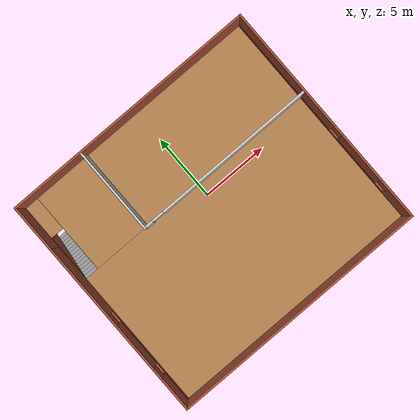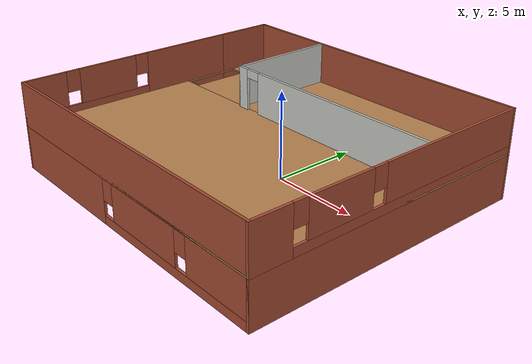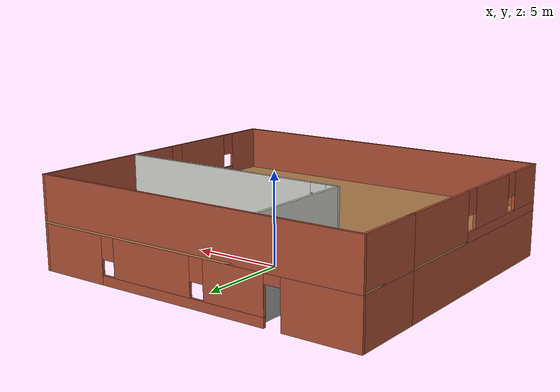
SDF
<?xml version='1.0'?>
<sdf version='1.7'>
  <model name='building'>
    <pose>-0.442049 -1.19175 0 0 -0 0</pose>
    <link name='Floor_0'>
      <pose>-0 0 2.5 0 -0 0</pose>
      <visual name='Floor_0_Visual_0'>
        <pose>-9.29585 0 0.05 0 -0 0</pose>
        <geometry>
          <box>
            <size>0.158294 16.75 0.1</size>
          </box>
        </geometry>
        <material>
          <script>
            <uri>file://media/materials/scripts/gazebo.material</uri>
            <name>Gazebo/Wood</name>
          </script>
          <ambient>1 1 1 1</ambient>
        </material>
        <meta>
          <layer>1</layer>
        </meta>
      </visual>
      <collision name='Floor_0_Collision_0'>
        <geometry>
          <box>
            <size>0.158294 16.75 0.1</size>
          </box>
        </geometry>
        <pose>-9.29585 0 0.05 0 -0 0</pose>
      </collision>
      <visual name='Floor_0_Visual_1'>
        <pose>0.079147 -3.11505 0.05 0 -0 0</pose>
        <geometry>
          <box>
            <size>18.5917 10.5199 0.1</size>
          </box>
        </geometry>
        <material>
          <script>
            <uri>file://media/materials/scripts/gazebo.material</uri>
            <name>Gazebo/Wood</name>
          </script>
          <ambient>1 1 1 1</ambient>
        </material>
        <meta>
          <layer>1</layer>
        </meta>
      </visual>
      <collision name='Floor_0_Collision_1'>
        <geometry>
          <box>
            <size>18.5917 10.5199 0.1</size>
          </box>
        </geometry>
        <pose>0.079147 -3.11505 0.05 0 -0 0</pose>
      </collision>
      <visual name='Floor_0_Visual_2'>
        <pose>0.579147 5.25995 0.05 0 -0 0</pose>
        <geometry>
          <box>
            <size>17.5917 6.23011 0.1</size>
          </box>
        </geometry>
        <material>
          <script>
            <uri>file://media/materials/scripts/gazebo.material</uri>
            <name>Gazebo/Wood</name>
          </script>
          <ambient>1 1 1 1</ambient>
        </material>
        <meta>
          <layer>1</layer>
        </meta>
      </visual>
      <collision name='Floor_0_Collision_2'>
        <geometry>
          <box>
            <size>17.5917 6.23011 0.1</size>
          </box>
        </geometry>
        <pose>0.579147 5.25995 0.05 0 -0 0</pose>
      </collision>
      <visual name='Floor_0_Visual_3'>
        <pose>-8.71671 7.00995 0.05 0 -0 0</pose>
        <geometry>
          <box>
            <size>1 2.73011 0.1</size>
          </box>
        </geometry>
        <material>
          <script>
            <uri>file://media/materials/scripts/gazebo.material</uri>
            <name>Gazebo/Wood</name>
          </script>
          <ambient>1 1 1 1</ambient>
        </material>
        <meta>
          <layer>1</layer>
        </meta>
      </visual>
      <collision name='Floor_0_Collision_3'>
        <geometry>
          <box>
            <size>1 2.73011 0.1</size>
          </box>
        </geometry>
        <pose>-8.71671 7.00995 0.05 0 -0 0</pose>
      </collision>
    </link>
    <link name='Stairs_0'>
      <visual name='Stairs_0_Visual_0'>
        <pose>-8.71671 5.52822 0.083333 0 -0 0</pose>
        <geometry>
          <box>
            <size>1 0.233333 0.166667</size>
          </box>
        </geometry>
        <material>
          <script>
            <uri>file://media/materials/scripts/gazebo.material</uri>
            <name>Gazebo/Grey</name>
          </script>
          <ambient>1 1 1 1</ambient>
        </material>
        <meta>
          <layer>0</layer>
        </meta>
      </visual>
      <collision name='Stairs_0_Collision_0'>
        <geometry>
          <box>
            <size>1 0.233333 0.166667</size>
          </box>
        </geometry>
        <pose>-8.71671 5.52822 0.083333 0 -0 0</pose>
      </collision>
      <visual name='Stairs_0_Visual_1'>
        <pose>-8.71671 5.29489 0.25 0 -0 0</pose>
        <geometry>
          <box>
            <size>1 0.233333 0.166667</size>
          </box>
        </geometry>
        <material>
          <script>
            <uri>file://media/materials/scripts/gazebo.material</uri>
            <name>Gazebo/Grey</name>
          </script>
          <ambient>1 1 1 1</ambient>
        </material>
        <meta>
          <layer>0</layer>
        </meta>
      </visual>
      <collision name='Stairs_0_Collision_1'>
        <geometry>
          <box>
            <size>1 0.233333 0.166667</size>
          </box>
        </geometry>
        <pose>-8.71671 5.29489 0.25 0 -0 0</pose>
      </collision>
      <visual name='Stairs_0_Visual_2'>
        <pose>-8.71671 5.06156 0.416667 0 -0 0</pose>
        <geometry>
          <box>
            <size>1 0.233333 0.166667</size>
          </box>
        </geometry>
        <material>
          <script>
            <uri>file://media/materials/scripts/gazebo.material</uri>
            <name>Gazebo/Grey</name>
          </script>
          <ambient>1 1 1 1</ambient>
        </material>
        <meta>
          <layer>0</layer>
        </meta>
      </visual>
      <collision name='Stairs_0_Collision_2'>
        <geometry>
          <box>
            <size>1 0.233333 0.166667</size>
          </box>
        </geometry>
        <pose>-8.71671 5.06156 0.416667 0 -0 0</pose>
      </collision>
      <visual name='Stairs_0_Visual_3'>
        <pose>-8.71671 4.82822 0.583333 0 -0 0</pose>
        <geometry>
          <box>
            <size>1 0.233333 0.166667</size>
          </box>
        </geometry>
        <material>
          <script>
            <uri>file://media/materials/scripts/gazebo.material</uri>
            <name>Gazebo/Grey</name>
          </script>
          <ambient>1 1 1 1</ambient>
        </material>
        <meta>
          <layer>0</layer>
        </meta>
      </visual>
      <collision name='Stairs_0_Collision_3'>
        <geometry>
          <box>
            <size>1 0.233333 0.166667</size>
          </box>
        </geometry>
        <pose>-8.71671 4.82822 0.583333 0 -0 0</pose>
      </collision>
      <visual name='Stairs_0_Visual_4'>
        <pose>-8.71671 4.59489 0.75 0 -0 0</pose>
        <geometry>
          <box>
            <size>1 0.233333 0.166667</size>
          </box>
        </geometry>
        <material>
          <script>
            <uri>file://media/materials/scripts/gazebo.material</uri>
            <name>Gazebo/Grey</name>
          </script>
          <ambient>1 1 1 1</ambient>
        </material>
        <meta>
          <layer>0</layer>
        </meta>
      </visual>
      <collision name='Stairs_0_Collision_4'>
        <geometry>
          <box>
            <size>1 0.233333 0.166667</size>
          </box>
        </geometry>
        <pose>-8.71671 4.59489 0.75 0 -0 0</pose>
      </collision>
      <visual name='Stairs_0_Visual_5'>
        <pose>-8.71671 4.36156 0.916667 0 -0 0</pose>
        <geometry>
          <box>
            <size>1 0.233333 0.166667</size>
          </box>
        </geometry>
        <material>
          <script>
            <uri>file://media/materials/scripts/gazebo.material</uri>
            <name>Gazebo/Grey</name>
          </script>
          <ambient>1 1 1 1</ambient>
        </material>
        <meta>
          <layer>0</layer>
        </meta>
      </visual>
      <collision name='Stairs_0_Collision_5'>
        <geometry>
          <box>
            <size>1 0.233333 0.166667</size>
          </box>
        </geometry>
        <pose>-8.71671 4.36156 0.916667 0 -0 0</pose>
      </collision>
      <visual name='Stairs_0_Visual_6'>
        <pose>-8.71671 4.12822 1.08333 0 -0 0</pose>
        <geometry>
          <box>
            <size>1 0.233333 0.166667</size>
          </box>
        </geometry>
        <material>
          <script>
            <uri>file://media/materials/scripts/gazebo.material</uri>
            <name>Gazebo/Grey</name>
          </script>
          <ambient>1 1 1 1</ambient>
        </material>
        <meta>
          <layer>0</layer>
        </meta>
      </visual>
      <collision name='Stairs_0_Collision_6'>
        <geometry>
          <box>
            <size>1 0.233333 0.166667</size>
          </box>
        </geometry>
        <pose>-8.71671 4.12822 1.08333 0 -0 0</pose>
      </collision>
      <visual name='Stairs_0_Visual_7'>
        <pose>-8.71671 3.89489 1.25 0 -0 0</pose>
        <geometry>
          <box>
            <size>1 0.233333 0.166667</size>
          </box>
        </geometry>
        <material>
          <script>
            <uri>file://media/materials/scripts/gazebo.material</uri>
            <name>Gazebo/Grey</name>
          </script>
          <ambient>1 1 1 1</ambient>
        </material>
        <meta>
          <layer>0</layer>
        </meta>
      </visual>
      <collision name='Stairs_0_Collision_7'>
        <geometry>
          <box>
            <size>1 0.233333 0.166667</size>
          </box>
        </geometry>
        <pose>-8.71671 3.89489 1.25 0 -0 0</pose>
      </collision>
      <visual name='Stairs_0_Visual_8'>
        <pose>-8.71671 3.66156 1.41667 0 -0 0</pose>
        <geometry>
          <box>
            <size>1 0.233333 0.166667</size>
          </box>
        </geometry>
        <material>
          <script>
            <uri>file://media/materials/scripts/gazebo.material</uri>
            <name>Gazebo/Grey</name>
          </script>
          <ambient>1 1 1 1</ambient>
        </material>
        <meta>
          <layer>0</layer>
        </meta>
      </visual>
      <collision name='Stairs_0_Collision_8'>
        <geometry>
          <box>
            <size>1 0.233333 0.166667</size>
          </box>
        </geometry>
        <pose>-8.71671 3.66156 1.41667 0 -0 0</pose>
      </collision>
      <visual name='Stairs_0_Visual_9'>
        <pose>-8.71671 3.42822 1.58333 0 -0 0</pose>
        <geometry>
          <box>
            <size>1 0.233333 0.166667</size>
          </box>
        </geometry>
        <material>
          <script>
            <uri>file://media/materials/scripts/gazebo.material</uri>
            <name>Gazebo/Grey</name>
          </script>
          <ambient>1 1 1 1</ambient>
        </material>
        <meta>
          <layer>0</layer>
        </meta>
      </visual>
      <collision name='Stairs_0_Collision_9'>
        <geometry>
          <box>
            <size>1 0.233333 0.166667</size>
          </box>
        </geometry>
        <pose>-8.71671 3.42822 1.58333 0 -0 0</pose>
      </collision>
      <visual name='Stairs_0_Visual_10'>
        <pose>-8.71671 3.19489 1.75 0 -0 0</pose>
        <geometry>
          <box>
            <size>1 0.233333 0.166667</size>
          </box>
        </geometry>
        <material>
          <script>
            <uri>file://media/materials/scripts/gazebo.material</uri>
            <name>Gazebo/Grey</name>
          </script>
          <ambient>1 1 1 1</ambient>
        </material>
        <meta>
          <layer>0</layer>
        </meta>
      </visual>
      <collision name='Stairs_0_Collision_10'>
        <geometry>
          <box>
            <size>1 0.233333 0.166667</size>
          </box>
        </geometry>
        <pose>-8.71671 3.19489 1.75 0 -0 0</pose>
      </collision>
      <visual name='Stairs_0_Visual_11'>
        <pose>-8.71671 2.96156 1.91667 0 -0 0</pose>
        <geometry>
          <box>
            <size>1 0.233333 0.166667</size>
          </box>
        </geometry>
        <material>
          <script>
            <uri>file://media/materials/scripts/gazebo.material</uri>
            <name>Gazebo/Grey</name>
          </script>
          <ambient>1 1 1 1</ambient>
        </material>
        <meta>
          <layer>0</layer>
        </meta>
      </visual>
      <collision name='Stairs_0_Collision_11'>
        <geometry>
          <box>
            <size>1 0.233333 0.166667</size>
          </box>
        </geometry>
        <pose>-8.71671 2.96156 1.91667 0 -0 0</pose>
      </collision>
      <visual name='Stairs_0_Visual_12'>
        <pose>-8.71671 2.72822 2.08333 0 -0 0</pose>
        <geometry>
          <box>
            <size>1 0.233333 0.166667</size>
          </box>
        </geometry>
        <material>
          <script>
            <uri>file://media/materials/scripts/gazebo.material</uri>
            <name>Gazebo/Grey</name>
          </script>
          <ambient>1 1 1 1</ambient>
        </material>
        <meta>
          <layer>0</layer>
        </meta>
      </visual>
      <collision name='Stairs_0_Collision_12'>
        <geometry>
          <box>
            <size>1 0.233333 0.166667</size>
          </box>
        </geometry>
        <pose>-8.71671 2.72822 2.08333 0 -0 0</pose>
      </collision>
      <visual name='Stairs_0_Visual_13'>
        <pose>-8.71671 2.49489 2.25 0 -0 0</pose>
        <geometry>
          <box>
            <size>1 0.233333 0.166667</size>
          </box>
        </geometry>
        <material>
          <script>
            <uri>file://media/materials/scripts/gazebo.material</uri>
            <name>Gazebo/Grey</name>
          </script>
          <ambient>1 1 1 1</ambient>
        </material>
        <meta>
          <layer>0</layer>
        </meta>
      </visual>
      <collision name='Stairs_0_Collision_13'>
        <geometry>
          <box>
            <size>1 0.233333 0.166667</size>
          </box>
        </geometry>
        <pose>-8.71671 2.49489 2.25 0 -0 0</pose>
      </collision>
      <visual name='Stairs_0_Visual_14'>
        <pose>-8.71671 2.26156 2.41667 0 -0 0</pose>
        <geometry>
          <box>
            <size>1 0.233333 0.166667</size>
          </box>
        </geometry>
        <material>
          <script>
            <uri>file://media/materials/scripts/gazebo.material</uri>
            <name>Gazebo/Grey</name>
          </script>
          <ambient>1 1 1 1</ambient>
        </material>
        <meta>
          <layer>0</layer>
        </meta>
      </visual>
      <collision name='Stairs_0_Collision_14'>
        <geometry>
          <box>
            <size>1 0.233333 0.166667</size>
          </box>
        </geometry>
        <pose>-8.71671 2.26156 2.41667 0 -0 0</pose>
      </collision>
    </link>
    <link name='Wall_10'>
      <collision name='Wall_10_Collision'>
        <geometry>
          <box>
            <size>5.5 0.15 2.5</size>
          </box>
        </geometry>
        <pose>0 0 1.25 0 -0 0</pose>
      </collision>
      <visual name='Wall_10_Visual'>
        <pose>0 0 1.25 0 -0 0</pose>
        <geometry>
          <box>
            <size>5.5 0.15 2.5</size>
          </box>
        </geometry>
        <material>
          <script>
            <uri>file://media/materials/scripts/gazebo.material</uri>
            <name>Gazebo/Grey</name>
          </script>
          <ambient>1 1 1 1</ambient>
        </material>
        <meta>
          <layer>0</layer>
        </meta>
      </visual>
      <pose>-6.60489 2.06455 0 0 -0 0</pose>
    </link>
    <link name='Wall_11'>
      <pose>-3.92989 5.11455 0 0 -0 1.5708</pose>
      <visual name='Wall_11_Visual_0'>
        <pose>-2.82977 0 1.25 0 -0 0</pose>
        <geometry>
          <box>
            <size>0.590451 0.15 2.5</size>
          </box>
        </geometry>
        <material>
          <script>
            <uri>file://media/materials/scripts/gazebo.material</uri>
            <name>Gazebo/Grey</name>
          </script>
          <ambient>1 1 1 1</ambient>
        </material>
        <meta>
          <layer>0</layer>
        </meta>
      </visual>
      <collision name='Wall_11_Collision_0'>
        <geometry>
          <box>
            <size>0.590451 0.15 2.5</size>
          </box>
        </geometry>
        <pose>-2.82977 0 1.25 0 -0 0</pose>
      </collision>
      <visual name='Wall_11_Visual_1'>
        <pose>0.745226 0 1.25 0 -0 0</pose>
        <geometry>
          <box>
            <size>4.75955 0.15 2.5</size>
          </box>
        </geometry>
        <material>
          <script>
            <uri>file://media/materials/scripts/gazebo.material</uri>
            <name>Gazebo/Grey</name>
          </script>
          <ambient>1 1 1 1</ambient>
        </material>
        <meta>
          <layer>0</layer>
        </meta>
      </visual>
      <collision name='Wall_11_Collision_1'>
        <geometry>
          <box>
            <size>4.75955 0.15 2.5</size>
          </box>
        </geometry>
        <pose>0.745226 0 1.25 0 -0 0</pose>
      </collision>
      <visual name='Wall_11_Visual_2'>
        <pose>-2.08455 0 2.25 0 -0 0</pose>
        <geometry>
          <box>
            <size>0.9 0.15 0.5</size>
          </box>
        </geometry>
        <material>
          <script>
            <uri>file://media/materials/scripts/gazebo.material</uri>
            <name>Gazebo/Grey</name>
          </script>
          <ambient>1 1 1 1</ambient>
        </material>
        <meta>
          <layer>0</layer>
        </meta>
      </visual>
      <collision name='Wall_11_Collision_2'>
        <geometry>
          <box>
            <size>0.9 0.15 0.5</size>
          </box>
        </geometry>
        <pose>-2.08455 0 2.25 0 -0 0</pose>
      </collision>
    </link>
    <link name='Wall_13'>
      <pose>-3.92989 -3.11045 0 0 -0 -1.5708</pose>
      <visual name='Wall_13_Visual_0'>
        <pose>-1.37456 0 1.25 0 -0 0</pose>
        <geometry>
          <box>
            <size>7.75088 0.15 2.5</size>
          </box>
        </geometry>
        <material>
          <script>
            <uri>file://media/materials/scripts/gazebo.material</uri>
            <name>Gazebo/Grey</name>
          </script>
          <ambient>1 1 1 1</ambient>
        </material>
        <meta>
          <layer>0</layer>
        </meta>
      </visual>
      <collision name='Wall_13_Collision_0'>
        <geometry>
          <box>
            <size>7.75088 0.15 2.5</size>
          </box>
        </geometry>
        <pose>-1.37456 0 1.25 0 -0 0</pose>
      </collision>
      <visual name='Wall_13_Visual_1'>
        <pose>4.32544 0 1.25 0 -0 0</pose>
        <geometry>
          <box>
            <size>1.84912 0.15 2.5</size>
          </box>
        </geometry>
        <material>
          <script>
            <uri>file://media/materials/scripts/gazebo.material</uri>
            <name>Gazebo/Grey</name>
          </script>
          <ambient>1 1 1 1</ambient>
        </material>
        <meta>
          <layer>0</layer>
        </meta>
      </visual>
      <collision name='Wall_13_Collision_1'>
        <geometry>
          <box>
            <size>1.84912 0.15 2.5</size>
          </box>
        </geometry>
        <pose>4.32544 0 1.25 0 -0 0</pose>
      </collision>
      <visual name='Wall_13_Visual_2'>
        <pose>2.95088 0 2.25 0 -0 0</pose>
        <geometry>
          <box>
            <size>0.9 0.15 0.5</size>
          </box>
        </geometry>
        <material>
          <script>
            <uri>file://media/materials/scripts/gazebo.material</uri>
            <name>Gazebo/Grey</name>
          </script>
          <ambient>1 1 1 1</ambient>
        </material>
        <meta>
          <layer>0</layer>
        </meta>
      </visual>
      <collision name='Wall_13_Collision_2'>
        <geometry>
          <box>
            <size>0.9 0.15 0.5</size>
          </box>
        </geometry>
        <pose>2.95088 0 2.25 0 -0 0</pose>
      </collision>
    </link>
    <link name='Wall_15'>
      <pose>-9.3 -1.75 2.5 0 -0 -1.5708</pose>
      <visual name='Wall_15_Visual_0'>
        <pose>-3.86097 0 1.25 0 -0 0</pose>
        <geometry>
          <box>
            <size>5.52805 0.15 2.5</size>
          </box>
        </geometry>
        <material>
          <script>
            <uri>file://media/materials/scripts/gazebo.material</uri>
            <name>Gazebo/Bricks</name>
          </script>
          <ambient>1 1 1 1</ambient>
        </material>
        <meta>
          <layer>1</layer>
        </meta>
      </visual>
      <collision name='Wall_15_Collision_0'>
        <geometry>
          <box>
            <size>5.52805 0.15 2.5</size>
          </box>
        </geometry>
        <pose>-3.86097 0 1.25 0 -0 0</pose>
      </collision>
      <visual name='Wall_15_Visual_1'>
        <pose>2.76403 0 0.25 0 -0 0</pose>
        <geometry>
          <box>
            <size>7.72195 0.15 0.5</size>
          </box>
        </geometry>
        <material>
          <script>
            <uri>file://media/materials/scripts/gazebo.material</uri>
            <name>Gazebo/Bricks</name>
          </script>
          <ambient>1 1 1 1</ambient>
        </material>
        <meta>
          <layer>1</layer>
        </meta>
      </visual>
      <collision name='Wall_15_Collision_1'>
        <geometry>
          <box>
            <size>7.72195 0.15 0.5</size>
          </box>
        </geometry>
        <pose>2.76403 0 0.25 0 -0 0</pose>
      </collision>
      <visual name='Wall_15_Visual_2'>
        <pose>1.49543 0 1.5 0 -0 0</pose>
        <geometry>
          <box>
            <size>3.58476 0.15 2</size>
          </box>
        </geometry>
        <material>
          <script>
            <uri>file://media/materials/scripts/gazebo.material</uri>
            <name>Gazebo/Bricks</name>
          </script>
          <ambient>1 1 1 1</ambient>
        </material>
        <meta>
          <layer>1</layer>
        </meta>
      </visual>
      <collision name='Wall_15_Collision_2'>
        <geometry>
          <box>
            <size>3.58476 0.15 2</size>
          </box>
        </geometry>
        <pose>1.49543 0 1.5 0 -0 0</pose>
      </collision>
      <visual name='Wall_15_Visual_3'>
        <pose>5.3564 0 1.5 0 -0 0</pose>
        <geometry>
          <box>
            <size>2.53719 0.15 2</size>
          </box>
        </geometry>
        <material>
          <script>
            <uri>file://media/materials/scripts/gazebo.material</uri>
            <name>Gazebo/Bricks</name>
          </script>
          <ambient>1 1 1 1</ambient>
        </material>
        <meta>
          <layer>1</layer>
        </meta>
      </visual>
      <collision name='Wall_15_Collision_3'>
        <geometry>
          <box>
            <size>2.53719 0.15 2</size>
          </box>
        </geometry>
        <pose>5.3564 0 1.5 0 -0 0</pose>
      </collision>
      <visual name='Wall_15_Visual_4'>
        <pose>-0.696951 0 1.9 0 -0 0</pose>
        <geometry>
          <box>
            <size>0.8 0.15 1.2</size>
          </box>
        </geometry>
        <material>
          <script>
            <uri>file://media/materials/scripts/gazebo.material</uri>
            <name>Gazebo/Bricks</name>
          </script>
          <ambient>1 1 1 1</ambient>
        </material>
        <meta>
          <layer>1</layer>
        </meta>
      </visual>
      <collision name='Wall_15_Collision_4'>
        <geometry>
          <box>
            <size>0.8 0.15 1.2</size>
          </box>
        </geometry>
        <pose>-0.696951 0 1.9 0 -0 0</pose>
      </collision>
      <visual name='Wall_15_Visual_5'>
        <pose>3.68781 0 1.9 0 -0 0</pose>
        <geometry>
          <box>
            <size>0.8 0.15 1.2</size>
          </box>
        </geometry>
        <material>
          <script>
            <uri>file://media/materials/scripts/gazebo.material</uri>
            <name>Gazebo/Bricks</name>
          </script>
          <ambient>1 1 1 1</ambient>
        </material>
        <meta>
          <layer>1</layer>
        </meta>
      </visual>
      <collision name='Wall_15_Collision_5'>
        <geometry>
          <box>
            <size>0.8 0.15 1.2</size>
          </box>
        </geometry>
        <pose>3.68781 0 1.9 0 -0 0</pose>
      </collision>
    </link>
    <link name='Wall_16'>
      <collision name='Wall_16_Collision'>
        <geometry>
          <box>
            <size>18.75 0.15 2.5</size>
          </box>
        </geometry>
        <pose>0 0 1.25 0 -0 0</pose>
      </collision>
      <visual name='Wall_16_Visual'>
        <pose>0 0 1.25 0 -0 0</pose>
        <geometry>
          <box>
            <size>18.75 0.15 2.5</size>
          </box>
        </geometry>
        <material>
          <script>
            <uri>file://media/materials/scripts/gazebo.material</uri>
            <name>Gazebo/Bricks</name>
          </script>
          <ambient>1 1 1 1</ambient>
        </material>
        <meta>
          <layer>1</layer>
        </meta>
      </visual>
      <pose>-0 -8.3 2.5 0 -0 0</pose>
    </link>
    <link name='Wall_17'>
      <pose>9.3 0 2.5 0 -0 1.5708</pose>
      <visual name='Wall_17_Visual_0'>
        <pose>-7.25726 0 1.25 0 -0 0</pose>
        <geometry>
          <box>
            <size>2.23549 0.15 2.5</size>
          </box>
        </geometry>
        <material>
          <script>
            <uri>file://media/materials/scripts/gazebo.material</uri>
            <name>Gazebo/Bricks</name>
          </script>
          <ambient>1 1 1 1</ambient>
        </material>
        <meta>
          <layer>1</layer>
        </meta>
      </visual>
      <collision name='Wall_17_Collision_0'>
        <geometry>
          <box>
            <size>2.23549 0.15 2.5</size>
          </box>
        </geometry>
        <pose>-7.25726 0 1.25 0 -0 0</pose>
      </collision>
      <visual name='Wall_17_Visual_1'>
        <pose>1.11774 0 0.25 0 -0 0</pose>
        <geometry>
          <box>
            <size>14.5145 0.15 0.5</size>
          </box>
        </geometry>
        <material>
          <script>
            <uri>file://media/materials/scripts/gazebo.material</uri>
            <name>Gazebo/Bricks</name>
          </script>
          <ambient>1 1 1 1</ambient>
        </material>
        <meta>
          <layer>1</layer>
        </meta>
      </visual>
      <collision name='Wall_17_Collision_1'>
        <geometry>
          <box>
            <size>14.5145 0.15 0.5</size>
          </box>
        </geometry>
        <pose>1.11774 0 0.25 0 -0 0</pose>
      </collision>
      <visual name='Wall_17_Visual_2'>
        <pose>-3.47674 0 1.5 0 -0 0</pose>
        <geometry>
          <box>
            <size>3.72555 0.15 2</size>
          </box>
        </geometry>
        <material>
          <script>
            <uri>file://media/materials/scripts/gazebo.material</uri>
            <name>Gazebo/Bricks</name>
          </script>
          <ambient>1 1 1 1</ambient>
        </material>
        <meta>
          <layer>1</layer>
        </meta>
      </visual>
      <collision name='Wall_17_Collision_2'>
        <geometry>
          <box>
            <size>3.72555 0.15 2</size>
          </box>
        </geometry>
        <pose>-3.47674 0 1.5 0 -0 0</pose>
      </collision>
      <visual name='Wall_17_Visual_3'>
        <pose>3.78052 0 1.5 0 -0 0</pose>
        <geometry>
          <box>
            <size>9.18896 0.15 2</size>
          </box>
        </geometry>
        <material>
          <script>
            <uri>file://media/materials/scripts/gazebo.material</uri>
            <name>Gazebo/Bricks</name>
          </script>
          <ambient>1 1 1 1</ambient>
        </material>
        <meta>
          <layer>1</layer>
        </meta>
      </visual>
      <collision name='Wall_17_Collision_3'>
        <geometry>
          <box>
            <size>9.18896 0.15 2</size>
          </box>
        </geometry>
        <pose>3.78052 0 1.5 0 -0 0</pose>
      </collision>
      <visual name='Wall_17_Visual_4'>
        <pose>-5.73951 0 1.9 0 -0 0</pose>
        <geometry>
          <box>
            <size>0.8 0.15 1.2</size>
          </box>
        </geometry>
        <material>
          <script>
            <uri>file://media/materials/scripts/gazebo.material</uri>
            <name>Gazebo/Bricks</name>
          </script>
          <ambient>1 1 1 1</ambient>
        </material>
        <meta>
          <layer>1</layer>
        </meta>
      </visual>
      <collision name='Wall_17_Collision_4'>
        <geometry>
          <box>
            <size>0.8 0.15 1.2</size>
          </box>
        </geometry>
        <pose>-5.73951 0 1.9 0 -0 0</pose>
      </collision>
      <visual name='Wall_17_Visual_5'>
        <pose>-1.21396 0 1.9 0 -0 0</pose>
        <geometry>
          <box>
            <size>0.8 0.15 1.2</size>
          </box>
        </geometry>
        <material>
          <script>
            <uri>file://media/materials/scripts/gazebo.material</uri>
            <name>Gazebo/Bricks</name>
          </script>
          <ambient>1 1 1 1</ambient>
        </material>
        <meta>
          <layer>1</layer>
        </meta>
      </visual>
      <collision name='Wall_17_Collision_5'>
        <geometry>
          <box>
            <size>0.8 0.15 1.2</size>
          </box>
        </geometry>
        <pose>-1.21396 0 1.9 0 -0 0</pose>
      </collision>
    </link>
    <link name='Wall_18'>
      <collision name='Wall_18_Collision'>
        <geometry>
          <box>
            <size>18.75 0.15 2.5</size>
          </box>
        </geometry>
        <pose>0 0 1.25 0 -0 0</pose>
      </collision>
      <visual name='Wall_18_Visual'>
        <pose>0 0 1.25 0 -0 0</pose>
        <geometry>
          <box>
            <size>18.75 0.15 2.5</size>
          </box>
        </geometry>
        <material>
          <script>
            <uri>file://media/materials/scripts/gazebo.material</uri>
            <name>Gazebo/Bricks</name>
          </script>
          <ambient>1 1 1 1</ambient>
        </material>
        <meta>
          <layer>1</layer>
        </meta>
      </visual>
      <pose>-0 8.3 2.5 0 -0 3.14159</pose>
    </link>
    <link name='Wall_19'>
      <collision name='Wall_19_Collision'>
        <geometry>
          <box>
            <size>4 0.15 2.5</size>
          </box>
        </geometry>
        <pose>0 0 1.25 0 -0 0</pose>
      </collision>
      <visual name='Wall_19_Visual'>
        <pose>0 0 1.25 0 -0 0</pose>
        <geometry>
          <box>
            <size>4 0.15 2.5</size>
          </box>
        </geometry>
        <material>
          <script>
            <uri>file://media/materials/scripts/gazebo.material</uri>
            <name>Gazebo/Bricks</name>
          </script>
          <ambient>1 1 1 1</ambient>
        </material>
        <meta>
          <layer>1</layer>
        </meta>
      </visual>
      <pose>-9.3 6.375 2.5 0 -0 -1.5708</pose>
    </link>
    <link name='Wall_21'>
      <collision name='Wall_21_Collision'>
        <geometry>
          <box>
            <size>6.25 0.15 2.5</size>
          </box>
        </geometry>
        <pose>0 0 1.25 0 -0 0</pose>
      </collision>
      <visual name='Wall_21_Visual'>
        <pose>0 0 1.25 0 -0 0</pose>
        <geometry>
          <box>
            <size>6.25 0.15 2.5</size>
          </box>
        </geometry>
        <material>
          <script>
            <uri>file://media/materials/scripts/gazebo.material</uri>
            <name>Gazebo/CeilingTiled</name>
          </script>
          <ambient>1 1 1 1</ambient>
        </material>
        <meta>
          <layer>1</layer>
        </meta>
      </visual>
      <pose>-3.92995 5.11475 2.5 0 -0 1.5708</pose>
    </link>
    <link name='Wall_24'>
      <pose>2.62005 2.06475 2.5 0 -0 0</pose>
      <visual name='Wall_24_Visual_0'>
        <pose>-6.27939 0 1.25 0 -0 0</pose>
        <geometry>
          <box>
            <size>0.691229 0.15 2.5</size>
          </box>
        </geometry>
        <material>
          <script>
            <uri>file://media/materials/scripts/gazebo.material</uri>
            <name>Gazebo/CeilingTiled</name>
          </script>
          <ambient>1 1 1 1</ambient>
        </material>
        <meta>
          <layer>1</layer>
        </meta>
      </visual>
      <collision name='Wall_24_Collision_0'>
        <geometry>
          <box>
            <size>0.691229 0.15 2.5</size>
          </box>
        </geometry>
        <pose>-6.27939 0 1.25 0 -0 0</pose>
      </collision>
      <visual name='Wall_24_Visual_1'>
        <pose>0.795615 0 1.25 0 -0 0</pose>
        <geometry>
          <box>
            <size>11.6588 0.15 2.5</size>
          </box>
        </geometry>
        <material>
          <script>
            <uri>file://media/materials/scripts/gazebo.material</uri>
            <name>Gazebo/CeilingTiled</name>
          </script>
          <ambient>1 1 1 1</ambient>
        </material>
        <meta>
          <layer>1</layer>
        </meta>
      </visual>
      <collision name='Wall_24_Collision_1'>
        <geometry>
          <box>
            <size>11.6588 0.15 2.5</size>
          </box>
        </geometry>
        <pose>0.795615 0 1.25 0 -0 0</pose>
      </collision>
      <visual name='Wall_24_Visual_2'>
        <pose>-5.48377 0 2.25 0 -0 0</pose>
        <geometry>
          <box>
            <size>0.9 0.15 0.5</size>
          </box>
        </geometry>
        <material>
          <script>
            <uri>file://media/materials/scripts/gazebo.material</uri>
            <name>Gazebo/CeilingTiled</name>
          </script>
          <ambient>1 1 1 1</ambient>
        </material>
        <meta>
          <layer>1</layer>
        </meta>
      </visual>
      <collision name='Wall_24_Collision_2'>
        <geometry>
          <box>
            <size>0.9 0.15 0.5</size>
          </box>
        </geometry>
        <pose>-5.48377 0 2.25 0 -0 0</pose>
      </collision>
    </link>
    <link name='Wall_4'>
      <collision name='Wall_4_Collision'>
        <geometry>
          <box>
            <size>13.25 0.15 2.5</size>
          </box>
        </geometry>
        <pose>0 0 1.25 0 -0 0</pose>
      </collision>
      <visual name='Wall_4_Visual'>
        <pose>0 0 1.25 0 -0 0</pose>
        <geometry>
          <box>
            <size>13.25 0.15 2.5</size>
          </box>
        </geometry>
        <material>
          <script>
            <uri>file://media/materials/scripts/gazebo.material</uri>
            <name>Gazebo/Bricks</name>
          </script>
          <ambient>1 1 1 1</ambient>
        </material>
        <meta>
          <layer>0</layer>
        </meta>
      </visual>
      <pose>-9.3 -1.75 0 0 -0 -1.5708</pose>
    </link>
    <link name='Wall_5'>
      <pose>-0 -8.3 0 0 -0 0</pose>
      <visual name='Wall_5_Visual_0'>
        <pose>-5.3941 0 1.25 0 -0 0</pose>
        <geometry>
          <box>
            <size>7.96179 0.15 2.5</size>
          </box>
        </geometry>
        <material>
          <script>
            <uri>file://media/materials/scripts/gazebo.material</uri>
            <name>Gazebo/Bricks</name>
          </script>
          <ambient>1 1 1 1</ambient>
        </material>
        <meta>
          <layer>0</layer>
        </meta>
      </visual>
      <collision name='Wall_5_Collision_0'>
        <geometry>
          <box>
            <size>7.96179 0.15 2.5</size>
          </box>
        </geometry>
        <pose>-5.3941 0 1.25 0 -0 0</pose>
      </collision>
      <visual name='Wall_5_Visual_1'>
        <pose>3.9809 0 0.25 0 -0 0</pose>
        <geometry>
          <box>
            <size>10.7882 0.15 0.5</size>
          </box>
        </geometry>
        <material>
          <script>
            <uri>file://media/materials/scripts/gazebo.material</uri>
            <name>Gazebo/Bricks</name>
          </script>
          <ambient>1 1 1 1</ambient>
        </material>
        <meta>
          <layer>0</layer>
        </meta>
      </visual>
      <collision name='Wall_5_Collision_1'>
        <geometry>
          <box>
            <size>10.7882 0.15 0.5</size>
          </box>
        </geometry>
        <pose>3.9809 0 0.25 0 -0 0</pose>
      </collision>
      <visual name='Wall_5_Visual_2'>
        <pose>1.91332 0 1.5 0 -0 0</pose>
        <geometry>
          <box>
            <size>5.05305 0.15 2</size>
          </box>
        </geometry>
        <material>
          <script>
            <uri>file://media/materials/scripts/gazebo.material</uri>
            <name>Gazebo/Bricks</name>
          </script>
          <ambient>1 1 1 1</ambient>
        </material>
        <meta>
          <layer>0</layer>
        </meta>
      </visual>
      <collision name='Wall_5_Collision_2'>
        <geometry>
          <box>
            <size>5.05305 0.15 2</size>
          </box>
        </geometry>
        <pose>1.91332 0 1.5 0 -0 0</pose>
      </collision>
      <visual name='Wall_5_Visual_3'>
        <pose>7.30742 0 1.5 0 -0 0</pose>
        <geometry>
          <box>
            <size>4.13516 0.15 2</size>
          </box>
        </geometry>
        <material>
          <script>
            <uri>file://media/materials/scripts/gazebo.material</uri>
            <name>Gazebo/Bricks</name>
          </script>
          <ambient>1 1 1 1</ambient>
        </material>
        <meta>
          <layer>0</layer>
        </meta>
      </visual>
      <collision name='Wall_5_Collision_3'>
        <geometry>
          <box>
            <size>4.13516 0.15 2</size>
          </box>
        </geometry>
        <pose>7.30742 0 1.5 0 -0 0</pose>
      </collision>
      <visual name='Wall_5_Visual_4'>
        <pose>-1.01321 0 1.9 0 -0 0</pose>
        <geometry>
          <box>
            <size>0.8 0.15 1.2</size>
          </box>
        </geometry>
        <material>
          <script>
            <uri>file://media/materials/scripts/gazebo.material</uri>
            <name>Gazebo/Bricks</name>
          </script>
          <ambient>1 1 1 1</ambient>
        </material>
        <meta>
          <layer>0</layer>
        </meta>
      </visual>
      <collision name='Wall_5_Collision_4'>
        <geometry>
          <box>
            <size>0.8 0.15 1.2</size>
          </box>
        </geometry>
        <pose>-1.01321 0 1.9 0 -0 0</pose>
      </collision>
      <visual name='Wall_5_Visual_5'>
        <pose>4.83984 0 1.9 0 -0 0</pose>
        <geometry>
          <box>
            <size>0.8 0.15 1.2</size>
          </box>
        </geometry>
        <material>
          <script>
            <uri>file://media/materials/scripts/gazebo.material</uri>
            <name>Gazebo/Bricks</name>
          </script>
          <ambient>1 1 1 1</ambient>
        </material>
        <meta>
          <layer>0</layer>
        </meta>
      </visual>
      <collision name='Wall_5_Collision_5'>
        <geometry>
          <box>
            <size>0.8 0.15 1.2</size>
          </box>
        </geometry>
        <pose>4.83984 0 1.9 0 -0 0</pose>
      </collision>
    </link>
    <link name='Wall_6'>
      <collision name='Wall_6_Collision'>
        <geometry>
          <box>
            <size>16.75 0.15 2.5</size>
          </box>
        </geometry>
        <pose>0 0 1.25 0 -0 0</pose>
      </collision>
      <visual name='Wall_6_Visual'>
        <pose>0 0 1.25 0 -0 0</pose>
        <geometry>
          <box>
            <size>16.75 0.15 2.5</size>
          </box>
        </geometry>
        <material>
          <script>
            <uri>file://media/materials/scripts/gazebo.material</uri>
            <name>Gazebo/Bricks</name>
          </script>
          <ambient>1 1 1 1</ambient>
        </material>
        <meta>
          <layer>0</layer>
        </meta>
      </visual>
      <pose>9.3 0 0 0 -0 1.5708</pose>
    </link>
    <link name='Wall_7'>
      <pose>-0 8.3 0 0 -0 3.14159</pose>
      <visual name='Wall_7_Visual_0'>
        <pose>-7.38788 0 1.25 0 -0 0</pose>
        <geometry>
          <box>
            <size>3.97425 0.15 2.5</size>
          </box>
        </geometry>
        <material>
          <script>
            <uri>file://media/materials/scripts/gazebo.material</uri>
            <name>Gazebo/Bricks</name>
          </script>
          <ambient>1 1 1 1</ambient>
        </material>
        <meta>
          <layer>0</layer>
        </meta>
      </visual>
      <collision name='Wall_7_Collision_0'>
        <geometry>
          <box>
            <size>3.97425 0.15 2.5</size>
          </box>
        </geometry>
        <pose>-7.38788 0 1.25 0 -0 0</pose>
      </collision>
      <visual name='Wall_7_Visual_1'>
        <pose>7.33995 0 1.25 0 -0 0</pose>
        <geometry>
          <box>
            <size>4.0701 0.15 2.5</size>
          </box>
        </geometry>
        <material>
          <script>
            <uri>file://media/materials/scripts/gazebo.material</uri>
            <name>Gazebo/Bricks</name>
          </script>
          <ambient>1 1 1 1</ambient>
        </material>
        <meta>
          <layer>0</layer>
        </meta>
      </visual>
      <collision name='Wall_7_Collision_1'>
        <geometry>
          <box>
            <size>4.0701 0.15 2.5</size>
          </box>
        </geometry>
        <pose>7.33995 0 1.25 0 -0 0</pose>
      </collision>
      <visual name='Wall_7_Visual_2'>
        <pose>-0.497924 0 0.25 0 -0 0</pose>
        <geometry>
          <box>
            <size>9.80565 0.15 0.5</size>
          </box>
        </geometry>
        <material>
          <script>
            <uri>file://media/materials/scripts/gazebo.material</uri>
            <name>Gazebo/Bricks</name>
          </script>
          <ambient>1 1 1 1</ambient>
        </material>
        <meta>
          <layer>0</layer>
        </meta>
      </visual>
      <collision name='Wall_7_Collision_2'>
        <geometry>
          <box>
            <size>9.80565 0.15 0.5</size>
          </box>
        </geometry>
        <pose>-0.497924 0 0.25 0 -0 0</pose>
      </collision>
      <visual name='Wall_7_Visual_3'>
        <pose>-2.19491 0 1.5 0 -0 0</pose>
        <geometry>
          <box>
            <size>4.81169 0.15 2</size>
          </box>
        </geometry>
        <material>
          <script>
            <uri>file://media/materials/scripts/gazebo.material</uri>
            <name>Gazebo/Bricks</name>
          </script>
          <ambient>1 1 1 1</ambient>
        </material>
        <meta>
          <layer>0</layer>
        </meta>
      </visual>
      <collision name='Wall_7_Collision_3'>
        <geometry>
          <box>
            <size>4.81169 0.15 2</size>
          </box>
        </geometry>
        <pose>-2.19491 0 1.5 0 -0 0</pose>
      </collision>
      <visual name='Wall_7_Visual_4'>
        <pose>2.70792 0 1.5 0 -0 0</pose>
        <geometry>
          <box>
            <size>3.39396 0.15 2</size>
          </box>
        </geometry>
        <material>
          <script>
            <uri>file://media/materials/scripts/gazebo.material</uri>
            <name>Gazebo/Bricks</name>
          </script>
          <ambient>1 1 1 1</ambient>
        </material>
        <meta>
          <layer>0</layer>
        </meta>
      </visual>
      <collision name='Wall_7_Collision_4'>
        <geometry>
          <box>
            <size>3.39396 0.15 2</size>
          </box>
        </geometry>
        <pose>2.70792 0 1.5 0 -0 0</pose>
      </collision>
      <visual name='Wall_7_Visual_5'>
        <pose>-5.00075 0 1.9 0 -0 0</pose>
        <geometry>
          <box>
            <size>0.8 0.15 1.2</size>
          </box>
        </geometry>
        <material>
          <script>
            <uri>file://media/materials/scripts/gazebo.material</uri>
            <name>Gazebo/Bricks</name>
          </script>
          <ambient>1 1 1 1</ambient>
        </material>
        <meta>
          <layer>0</layer>
        </meta>
      </visual>
      <collision name='Wall_7_Collision_5'>
        <geometry>
          <box>
            <size>0.8 0.15 1.2</size>
          </box>
        </geometry>
        <pose>-5.00075 0 1.9 0 -0 0</pose>
      </collision>
      <visual name='Wall_7_Visual_6'>
        <pose>0.610937 0 1.9 0 -0 0</pose>
        <geometry>
          <box>
            <size>0.8 0.15 1.2</size>
          </box>
        </geometry>
        <material>
          <script>
            <uri>file://media/materials/scripts/gazebo.material</uri>
            <name>Gazebo/Bricks</name>
          </script>
          <ambient>1 1 1 1</ambient>
        </material>
        <meta>
          <layer>0</layer>
        </meta>
      </visual>
      <collision name='Wall_7_Collision_6'>
        <geometry>
          <box>
            <size>0.8 0.15 1.2</size>
          </box>
        </geometry>
        <pose>0.610937 0 1.9 0 -0 0</pose>
      </collision>
      <visual name='Wall_7_Visual_7'>
        <pose>4.8549 0 2.25 0 -0 0</pose>
        <geometry>
          <box>
            <size>0.9 0.15 0.5</size>
          </box>
        </geometry>
        <material>
          <script>
            <uri>file://media/materials/scripts/gazebo.material</uri>
            <name>Gazebo/Bricks</name>
          </script>
          <ambient>1 1 1 1</ambient>
        </material>
        <meta>
          <layer>0</layer>
        </meta>
      </visual>
      <collision name='Wall_7_Collision_7'>
        <geometry>
          <box>
            <size>0.9 0.15 0.5</size>
          </box>
        </geometry>
        <pose>4.8549 0 2.25 0 -0 0</pose>
      </collision>
    </link>
    <link name='Wall_8'>
      <collision name='Wall_8_Collision'>
        <geometry>
          <box>
            <size>4 0.15 2.5</size>
          </box>
        </geometry>
        <pose>0 0 1.25 0 -0 0</pose>
      </collision>
      <visual name='Wall_8_Visual'>
        <pose>0 0 1.25 0 -0 0</pose>
        <geometry>
          <box>
            <size>4 0.15 2.5</size>
          </box>
        </geometry>
        <material>
          <script>
            <uri>file://media/materials/scripts/gazebo.material</uri>
            <name>Gazebo/Bricks</name>
          </script>
          <ambient>1 1 1 1</ambient>
        </material>
        <meta>
          <layer>0</layer>
        </meta>
      </visual>
      <pose>-9.3 6.375 0 0 -0 -1.5708</pose>
    </link>
    <static>1</static>
  </model>
</sdf>
